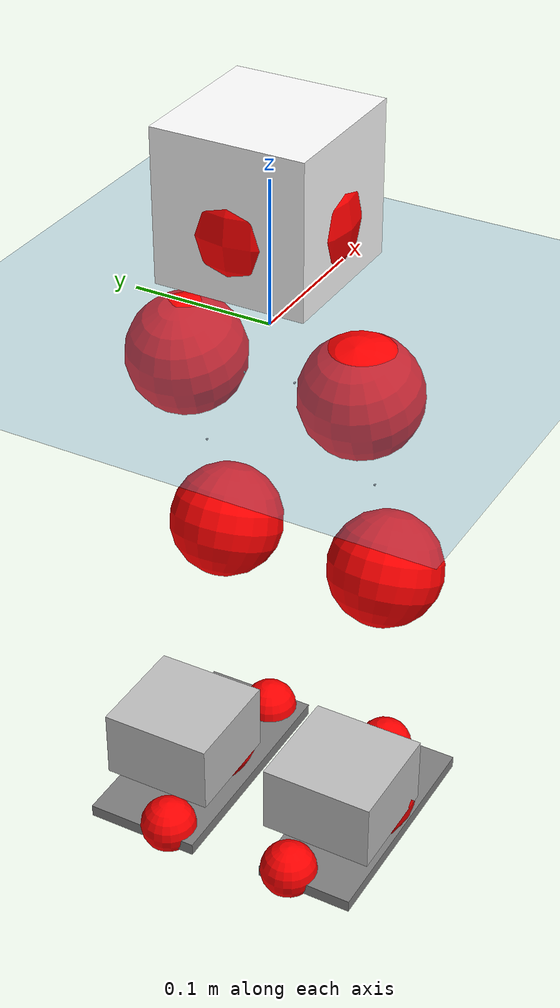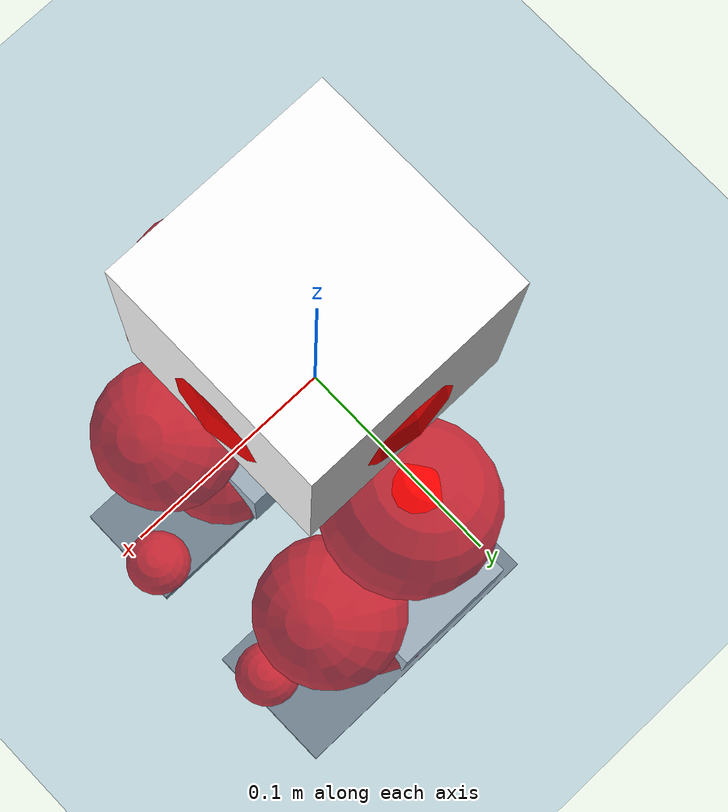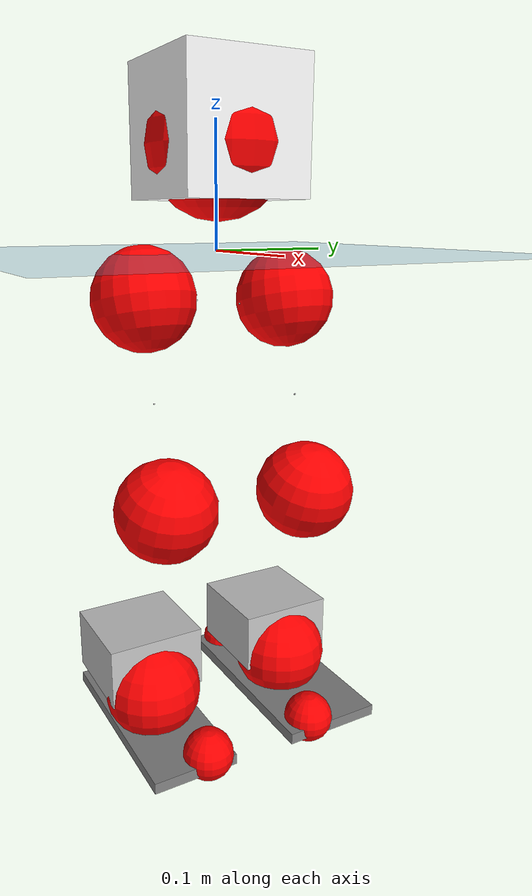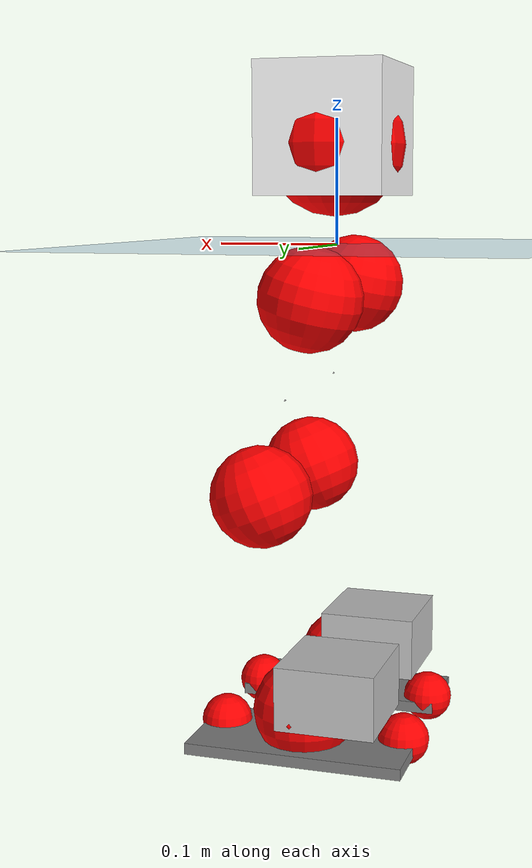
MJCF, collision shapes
<mujoco model="pi_12dof_release_v1">
  <compiler angle="radian" assetdir="assets" balanceinertia="true" inertiafromgeom="false"/>

  <option timestep="0.005" density="1.2" viscosity="2e-05"/>

  <size nkey="1"/>

  <visual>
    <quality shadowsize="8192"/>
    <map shadowclip="0.5"/>
  </visual>

  <default>
    <default class="/">
      <joint armature="0.01" damping="0.01" frictionloss="0.01"/>
      <geom contype="0" conaffinity="0" group="1" solref="-1000 -80"/>
      <site size="0.01 0.005 0.005" group="5"/>
      <general forcelimited="true" biastype="affine" gainprm="20" biasprm="0 -20 -0.5"/>
      <default class="foot">
        <geom size="0.0845 0.036 0.005" type="box" condim="6" group="4" priority="1" friction="0.9 0.2 0.2" solimp="0.015 1 0.005"/>
      </default>
      <default class="reward_collision_sphere">
        <geom group="5" rgba="1 0 0 1"/>
      </default>
    </default>
  </default>

  <asset>
    <texture type="skybox" colorspace="auto" name="//unnamed_texture_0" builtin="gradient" rgb1="0.95 0.95 0.95" rgb2="0.95 0.95 0.95" width="100" height="600"/>
    <texture type="2d" colorspace="auto" name="texplane" builtin="checker" rgb1="0.345 0.575 0.748" rgb2="0.345 0.575 0.748" markrgb="1 1 1" width="512" height="512"/>
    <material name="MatPlane" class="/" texture="texplane" texuniform="true" texrepeat="2 2" specular="0.9"/>
    <mesh name="baselink_1" class="/" file="baselink_1.STL"/>
    <mesh name="r_hip_pitch_link" class="/" file="r_hip_pitch_link.STL"/>
    <mesh name="r_hip_roll_link" class="/" file="r_hip_roll_link.STL"/>
    <mesh name="r_thigh_link" class="/" file="r_thigh_link.STL"/>
    <mesh name="r_calf_link" class="/" file="r_calf_link.STL"/>
    <mesh name="r_ankle_pitch_link" class="/" file="r_ankle_pitch_link.STL"/>
    <mesh name="r_ankle_roll_link" class="/" file="r_ankle_roll_link.STL"/>
    <mesh name="l_hip_pitch_link" class="/" file="l_hip_pitch_link.STL"/>
    <mesh name="l_hip_roll_link" class="/" file="l_hip_roll_link.STL"/>
    <mesh name="l_thigh_link" class="/" file="l_thigh_link.STL"/>
    <mesh name="l_calf_link" class="/" file="l_calf_link.STL"/>
    <mesh name="l_ankle_pitch_link" class="/" file="l_ankle_pitch_link.STL"/>
    <mesh name="l_ankle_roll_link" class="/" file="l_ankle_roll_link.STL"/>
  </asset>

  <worldbody>
    <geom name="floor" class="/" size="100 100 0.125" type="plane" group="0" material="MatPlane"/>
    <light name="toplight_shadow" class="/" pos="0 0 5" dir="0.0990148 0.0990148 -0.990148" type="directional" ambient="0.04 0.04 0.04" diffuse="0.55 0.55 0.55" specular="0.12 0.12 0.12"/>
    <light name="toplight_fill" class="/" pos="0 0 5" dir="0.0990148 0.0990148 -0.990148" type="directional" castshadow="false" ambient="0.04 0.04 0.04" diffuse="0.3 0.3 0.3" specular="0.08 0.08 0.08"/>
    <body name="trunk" pos="0.00152631 0.000847432 -0.00219755" quat="0.999999 -0.000896171 -0.000566376 0.000204938">
      <inertial pos="0.000790198 0.00138597 0.0479414" quat="0.694362 0.00708745 0.0105473 0.719513" mass="2.42922" diaginertia="0.0180946 0.00342365 0.00937791"/>
      <joint name="//unnamed_joint_0" type="free"/>
      <geom name="//unnamed_geom_1" class="/" type="mesh" density="0" rgba="1 1 1 1" mesh="baselink_1"/>
      <geom name="//unnamed_geom_2" class="/" size="0.051907 0.051907 0.051907" pos="0 0 0.0934075" type="box" rgba="1 1 1 1"/>
      <geom name="//unnamed_geom_3" class="reward_collision_sphere" size="0.0570977" pos="0 0 0.0817316"/>
      <site name="imu" class="/" pos="0.0048124 0.0126963 0.0115863" size="0.0103814"/>
      <camera name="track" class="/" pos="0 -1.64124 0" quat="0.707107 0.707107 0 0" mode="trackcom"/>
      <camera name="ego_camera" class="/" pos="0.0844653 0 0.210167" quat="-0.5 -0.5 0.5 0.5"/>
      <body name="r_hip_pitch_link" pos="-0.00104982 -0.0186423 -0.0363237" quat="0.992103 -0.000249009 -0.125424 -0.00063602">
        <inertial pos="0.000978358 -0.0486785 0.000585162" quat="-0.0184887 0.70256 -0.0305362 0.710728" mass="0.401551" diaginertia="0.000199751 3.74985e-05 0.000180722"/>
        <joint name="r_hip_pitch_joint" class="/" pos="0 0 0" axis="0.0126726 -0.999895 0.00709751" range="-1.79683 1.23255" armature="0.0099298" damping="0.0257478" frictionloss="0.0118457"/>
        <geom name="//unnamed_geom_4" class="/" type="mesh" density="0" rgba="0.75294 0.75294 0.75294 1" mesh="r_hip_pitch_link"/>
        <geom name="//unnamed_geom_5" class="/" size="0.00051907 0.00051907 0.00051907" type="box" rgba="0.75294 0.75294 0.75294 1"/>
        <body name="r_hip_roll_link" pos="0.0028477 -0.0468338 0.00246785" quat="0.999999 0.00110561 -0.000419924 0.000672538">
          <inertial pos="0.00121973 -0.00275399 -0.0733434" quat="0.706328 -0.0792156 -0.0830166 0.698523" mass="0.423029" diaginertia="0.000600947 9.87489e-05 0.000273296"/>
          <joint name="r_hip_roll_joint" class="/" pos="0 0 0" axis="-0.999908 0.00327124 0.0131405" range="-0.125948 0.440737" armature="0.00951547" damping="0.00234565" frictionloss="0.0117552"/>
          <geom name="//unnamed_geom_6" class="/" type="mesh" density="0" rgba="0.75294 0.75294 0.75294 1" mesh="r_hip_roll_link"/>
          <geom name="//unnamed_geom_7" class="/" size="0.00051907 0.00051907 0.00051907" type="box" rgba="0.75294 0.75294 0.75294 1"/>
          <geom name="//unnamed_geom_8" class="reward_collision_sphere" size="0.0415256"/>
          <body name="r_thigh_link" pos="-0.000787508 -0.00209767 -0.0811599" quat="0.999999 0.00123159 -0.000267296 -0.000453668">
            <inertial pos="-0.00250858 -1.91154e-05 -0.05259" quat="0.732632 0.680612 0.00322744 0.00283411" mass="0.125881" diaginertia="0.000222483 3.70657e-05 0.000128975"/>
            <joint name="r_thigh_joint" class="/" pos="0 0 0" axis="-0.00117787 -0.00123013 -0.999999" range="-0.356656 0.648112" armature="0.00913082" damping="0.00539498" frictionloss="0.00961218"/>
            <geom name="//unnamed_geom_9" class="/" type="mesh" density="0" rgba="0.75294 0.75294 0.75294 1" mesh="r_thigh_link"/>
            <geom name="//unnamed_geom_10" class="/" size="0.00051907 0.00051907 0.00051907" type="box" rgba="0.75294 0.75294 0.75294 1"/>
            <body name="r_calf_link" pos="-0.000521561 -0.000695651 -0.084347" quat="0.947488 0.0010312 0.319789 -0.000681808">
              <inertial pos="0.00182298 -0.003355 -0.08227" quat="0.999879 -0.000650382 -0.0115462 0.0103612" mass="0.903223" diaginertia="0.00595518 0.00125801 0.000353672"/>
              <joint name="r_calf_joint" class="/" pos="0 0 0" axis="0.0129989 -0.999891 0.00694006" range="-1.61489 0.668587" armature="0.010704" damping="0.00656342" frictionloss="0.0118338"/>
              <geom name="//unnamed_geom_11" class="/" type="mesh" density="0" rgba="0.75294 0.75294 0.75294 1" mesh="r_calf_link"/>
              <geom name="//unnamed_geom_12" class="/" size="0.00051907 0.00051907 0.00051907" type="box" rgba="0.75294 0.75294 0.75294 1"/>
              <geom name="//unnamed_geom_13" class="reward_collision_sphere" size="0.0415256"/>
              <body name="r_ankle_pitch_link" pos="0.00153102 -0.00203501 -0.163188" quat="0.980076 -3.54724e-05 -0.198624 5.7514e-05">
                <inertial pos="0.00794624 0.000144423 0.00088692" quat="0.00652611 0.715962 -0.00636391 0.69808" mass="0.197832" diaginertia="0.00054849 7.9197e-05 0.000260961"/>
                <joint name="r_ankle_pitch_joint" class="/" pos="0 0 0" axis="0.00969893 -0.999952 -0.0011187" stiffness="0.000511395" range="-1.25585 0.501454" armature="0.00999143" damping="0" frictionloss="0.0117397"/>
                <geom name="//unnamed_geom_14" class="/" type="mesh" density="0" rgba="0.75294 0.75294 0.75294 1" mesh="r_ankle_pitch_link"/>
                <geom name="//unnamed_geom_15" class="/" size="0.0404875 0.0415256 0.0259535" type="box" rgba="0.75294 0.75294 0.75294 1"/>
                <body name="r_ankle_roll_link" pos="0.085757 -0.000724725 -0.00125809" quat="1 -0.000170809 -0.000107756 -3.28388e-06">
                  <inertial pos="-0.0275159 -0.000935273 -0.0165138" quat="0.550241 0.431817 0.438541 0.564314" mass="0.584402" diaginertia="0.0020609 0.000383954 0.000594146"/>
                  <joint name="r_ankle_roll_joint" class="/" pos="0 0 0" axis="-0.999954 0.000850318 -0.00959955" stiffness="0.0085053" range="-0.193568 0.132695" armature="0.0115832" damping="0.0124625" frictionloss="0.0101037"/>
                  <geom name="//unnamed_geom_16" class="/" type="mesh" density="0" rgba="0.75294 0.75294 0.75294 1" mesh="r_ankle_roll_link"/>
                  <geom name="//unnamed_geom_17" class="/" type="mesh" rgba="0.75294 0.75294 0.75294 1" mesh="r_ankle_roll_link"/>
                  <geom name="right_foot" class="foot" size="0.0860078 0.0359814 0.00461072" pos="-0.0574364 0 -0.0513741"/>
                  <geom name="//unnamed_geom_19" class="reward_collision_sphere" size="0.0415256" pos="-0.0563102 0 -0.0233519"/>
                  <geom name="//unnamed_geom_20" class="reward_collision_sphere" size="0.0207628" pos="0.0168931 0.0164124 -0.0467038"/>
                  <geom name="//unnamed_geom_21" class="reward_collision_sphere" size="0.0207628" pos="-0.135144 0.0164124 -0.0467038"/>
                  <site name="right_foot" class="foot" pos="-0.0574364 0 -0.0513741" size="0.0103814"/>
                </body>
              </body>
            </body>
          </body>
        </body>
      </body>
      <body name="l_hip_pitch_link" pos="0.00123252 0.0196322 -0.0407134" quat="0.992221 -5.5281e-05 -0.124489 0.000130725">
        <inertial pos="0.00250477 0.0462811 -0.00305928" quat="-0.0450633 0.706405 0.0306609 0.705706" mass="0.445553" diaginertia="0.000228744 3.89213e-05 0.00022397"/>
        <joint name="l_hip_pitch_joint" class="/" pos="0 0 0" axis="0.00905732 0.999955 0.00283374" range="-1.22103 1.74839" armature="0.0104073" damping="0.0229818" frictionloss="0.0103085"/>
        <geom name="//unnamed_geom_22" class="/" type="mesh" density="0" rgba="0.75294 0.75294 0.75294 1" mesh="l_hip_pitch_link"/>
        <geom name="//unnamed_geom_23" class="/" size="0.00051907 0.00051907 0.00051907" type="box" rgba="0.75294 0.75294 0.75294 1"/>
        <body name="l_hip_roll_link" pos="0.000533255 0.0437263 0.00269415" quat="1 0.000399344 -0.00014019 0.000224637">
          <inertial pos="-0.00204253 0.000202699 -0.071893" quat="0.699778 -0.069292 -0.0753881 0.706983" mass="0.447426" diaginertia="0.00060378 0.000102842 0.000290119"/>
          <joint name="l_hip_roll_joint" class="/" pos="0 0 0" axis="-0.999966 0.00821415 -0.00099448" stiffness="0.000412745" range="-0.479283 0.172716" armature="0.00951995" damping="0.00689366" frictionloss="0.00974061"/>
          <geom name="//unnamed_geom_24" class="/" type="mesh" density="0" rgba="0.75294 0.75294 0.75294 1" mesh="l_hip_roll_link"/>
          <geom name="//unnamed_geom_25" class="/" size="0.00051907 0.00051907 0.00051907" type="box" rgba="0.75294 0.75294 0.75294 1"/>
          <geom name="//unnamed_geom_26" class="reward_collision_sphere" size="0.0415256"/>
          <body name="l_thigh_link" pos="0.000757059 -0.000792063 -0.0824886" quat="1 -0.000147508 -3.55157e-05 2.73114e-05">
            <inertial pos="-0.000766291 0.000381071 -0.0555126" quat="0.67972 0.733392 0.00395827 0.0100695" mass="0.127781" diaginertia="0.00022221 3.54182e-05 0.000124755"/>
            <joint name="l_thigh_joint" class="/" pos="0 0 0" axis="-0.00463198 -0.00725172 -0.999963" stiffness="0.00895496" range="-0.607265 0.355442" armature="0.0114943" damping="0" frictionloss="0.0116539"/>
            <geom name="//unnamed_geom_27" class="/" type="mesh" density="0" rgba="0.75294 0.75294 0.75294 1" mesh="l_thigh_link"/>
            <geom name="//unnamed_geom_28" class="/" size="0.00051907 0.00051907 0.00051907" type="box" rgba="0.75294 0.75294 0.75294 1"/>
            <body name="l_calf_link" pos="0.0010345 -0.00214311 -0.081968" quat="0.947562 -0.000417911 0.31957 0.000850135">
              <inertial pos="0.00228097 0.00528401 -0.0832103" quat="0.999881 0.00184256 0.013852 0.0065306" mass="0.910042" diaginertia="0.00634023 0.00130257 0.00038288"/>
              <joint name="l_calf_joint" class="/" pos="0 0 0" axis="-0.00893855 0.999942 -0.00599236" range="-0.630084 1.59991" armature="0.0107146" damping="0.0082676" frictionloss="0.00903524"/>
              <geom name="//unnamed_geom_29" class="/" type="mesh" density="0" rgba="0.75294 0.75294 0.75294 1" mesh="l_calf_link"/>
              <geom name="//unnamed_geom_30" class="/" size="0.00051907 0.00051907 0.00051907" type="box" rgba="0.75294 0.75294 0.75294 1"/>
              <geom name="//unnamed_geom_31" class="reward_collision_sphere" size="0.0415256"/>
              <body name="l_ankle_pitch_link" pos="-0.000383697 0.00185423 -0.165002" quat="0.980049 3.86099e-05 -0.198755 1.32291e-05">
                <inertial pos="0.00649177 -0.000377402 6.31043e-05" quat="-0.00397878 0.706451 0.000492388 0.707751" mass="0.190531" diaginertia="0.000562838 8.54304e-05 0.000260326"/>
                <joint name="l_ankle_pitch_joint" class="/" pos="0 0 0" axis="-0.000224189 1 -0.000187736" range="-0.501813 1.27776" armature="0.0103584" damping="0.00237316" frictionloss="0.0114202"/>
                <geom name="//unnamed_geom_32" class="/" type="mesh" density="0" rgba="0.75294 0.75294 0.75294 1" mesh="l_ankle_pitch_link"/>
                <geom name="//unnamed_geom_33" class="/" size="0.0404875 0.0415256 0.0259535" type="box" rgba="0.75294 0.75294 0.75294 1"/>
                <body name="l_ankle_roll_link" pos="0.0842247 0.000360726 0.00232277" quat="1 -0.000648632 -2.24971e-05 -4.24009e-05">
                  <inertial pos="-0.0300936 -0.00120304 -0.0167977" quat="0.55016 0.435444 0.440599 0.559987" mass="0.587686" diaginertia="0.00209256 0.000385128 0.000636522"/>
                  <joint name="l_ankle_roll_joint" class="/" pos="0 0 0" axis="-0.999955 -0.00200928 -0.00931502" range="-0.148143 0.196064" armature="0.00982396" damping="0.0244636" frictionloss="0.00949508"/>
                  <geom name="//unnamed_geom_34" class="/" type="mesh" density="0" rgba="0.75294 0.75294 0.75294 1" mesh="l_ankle_roll_link"/>
                  <geom name="//unnamed_geom_35" class="/" type="mesh" rgba="0.75294 0.75294 0.75294 1" mesh="l_ankle_roll_link"/>
                  <geom name="left_foot" class="foot" size="0.0890044 0.0429626 0.0046459" pos="-0.0574364 0 -0.0513741"/>
                  <geom name="//unnamed_geom_37" class="reward_collision_sphere" size="0.0415256" pos="-0.0563102 0 -0.0233519"/>
                  <geom name="//unnamed_geom_38" class="reward_collision_sphere" size="0.0207628" pos="0.0168931 -0.0164124 -0.0467038"/>
                  <geom name="//unnamed_geom_39" class="reward_collision_sphere" size="0.0207628" pos="-0.135144 -0.0164124 -0.0467038"/>
                  <site name="left_foot" class="foot" pos="-0.0574364 0 -0.0513741" size="0.0103814"/>
                </body>
              </body>
            </body>
          </body>
        </body>
      </body>
    </body>
  </worldbody>

  <contact>
    <pair class="/" geom1="floor" geom2="right_foot" name="//unnamed_contact_1"/>
    <pair class="/" geom1="floor" geom2="left_foot" name="//unnamed_contact_0"/>
  </contact>

  <actuator>
    <general name="r_hip_pitch_joint" class="/" joint="r_hip_pitch_joint" forcerange="-21.5817 21.5817" gainprm="20.6395" biasprm="0 -20.6395 -0.550029"/>
    <general name="r_hip_roll_joint" class="/" joint="r_hip_roll_joint" forcerange="-24.0489 24.0489" gainprm="20.6395" biasprm="0 -20.6395 -0.550029"/>
    <general name="r_thigh_joint" class="/" joint="r_thigh_joint" forcerange="-22.5021 22.5021" gainprm="20.6395" biasprm="0 -20.6395 -0.550029"/>
    <general name="r_calf_joint" class="/" joint="r_calf_joint" forcerange="-23.1682 23.1682" gainprm="20.6395" biasprm="0 -20.6395 -0.550029"/>
    <general name="r_ankle_pitch_joint" class="/" joint="r_ankle_pitch_joint" forcerange="-21.3516 21.3516" gainprm="20.6395" biasprm="0 -20.6395 -0.550029"/>
    <general name="r_ankle_roll_joint" class="/" joint="r_ankle_roll_joint" forcerange="-19.9156 19.9156" gainprm="20.6395" biasprm="0 -20.6395 -0.550029"/>
    <general name="l_hip_pitch_joint" class="/" joint="l_hip_pitch_joint" forcerange="-21.7283 21.7283" gainprm="20.6395" biasprm="0 -20.6395 -0.550029"/>
    <general name="l_hip_roll_joint" class="/" joint="l_hip_roll_joint" forcerange="-19.8113 19.8113" gainprm="20.6395" biasprm="0 -20.6395 -0.550029"/>
    <general name="l_thigh_joint" class="/" joint="l_thigh_joint" forcerange="-22.6433 22.6433" gainprm="20.6395" biasprm="0 -20.6395 -0.550029"/>
    <general name="l_calf_joint" class="/" joint="l_calf_joint" forcerange="-21.9378 21.9378" gainprm="20.6395" biasprm="0 -20.6395 -0.550029"/>
    <general name="l_ankle_pitch_joint" class="/" joint="l_ankle_pitch_joint" forcerange="-23.7684 23.7684" gainprm="20.6395" biasprm="0 -20.6395 -0.550029"/>
    <general name="l_ankle_roll_joint" class="/" joint="l_ankle_roll_joint" forcerange="-21.3171 21.3171" gainprm="20.6395" biasprm="0 -20.6395 -0.550029"/>
  </actuator>

  <sensor>
    <gyro site="imu" name="imu_angular_velocity"/>
    <velocimeter site="imu" name="imu_linear_velocity"/>
    <framelinvel objtype="site" objname="left_foot" name="left_foot_global_linear_velocity"/>
    <framelinvel objtype="site" objname="right_foot" name="right_foot_global_linear_velocity"/>
  </sensor>

  <keyframe>
    <key name="home" qpos="0 0 0.291 1 0 0 0 0.4 0 0 -0.8 0.4 0 -0.4 0 0 0.8 -0.4 0"/>
  </keyframe>
</mujoco>
